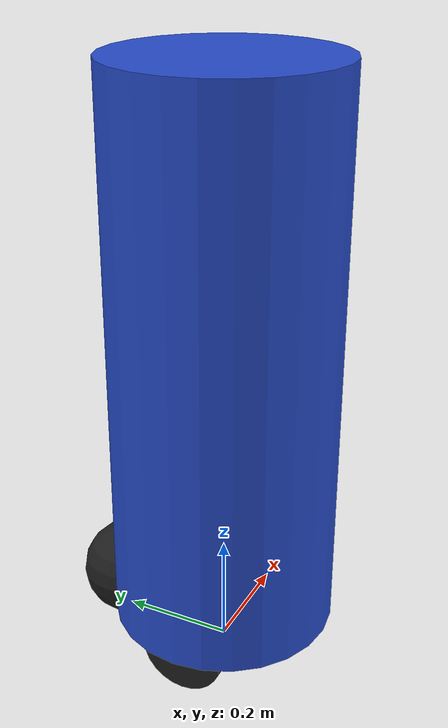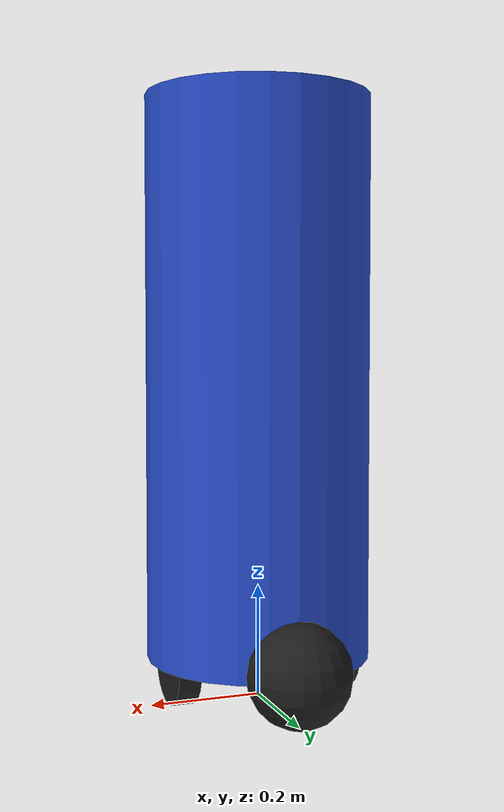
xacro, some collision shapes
<?xml version="1.0"?>
<robot xmlns:xacro="http://www.ros.org/wiki/xacro">

    <!-- Robot Base-->
    <xacro:property name="base_length" value="0.4" />
    <xacro:property name="base_width" value="0.4" />
    <xacro:property name="base_height" value="1" />
    <xacro:property name="wheel_radius" value="0.075" />
    <xacro:property name="wheel_length" value="0.04" />

    <link name="base_footprint" />

    <link name="base_link">
        <visual>
            <geometry>
                <mesh filename="package://telerobot_description/meshes/Mosro.stl" scale="0.001 0.001 0.001"/>
            </geometry>
            <origin xyz="0 0 ${base_height}" rpy="0 0 0" />
            <material name="blue" />
        </visual>
        <collision>
            <geometry>
                <cylinder radius="${base_width / 2.0}" length="${base_height}" />
            </geometry>
            <origin xyz="0 0 ${base_height / 2.0}" rpy="0 0 0" />
        </collision>
        <xacro:box_inertia m="1.0" l="${2*base_length}" w="${2*base_width}" h="${2*base_height}"
                           xyz="0 0 ${base_height / 2.0}" rpy="0 0 0" />
    </link>

    <joint name="base_to_base_footprint" type="fixed">
        <parent link="base_footprint" />
        <child link="base_link" />
        <origin xyz="0 0 ${wheel_radius}" rpy="0 0 0" />
    </joint>

    <link name="left_wheel_link">
        <visual>
            <geometry>
                <cylinder radius="${wheel_radius}" length="${wheel_length}" />
            </geometry>
            <origin xyz="0 0 0" rpy="0 ${3.14159/2.0} 0" />
            <material name="black" />
        </visual>
        <collision>
            <geometry>
                <cylinder radius="${wheel_radius}" length="${wheel_length}" />
            </geometry>
            <origin xyz="0 0 0" rpy="0 ${3.14159/2.0} 0" />
        </collision>
        <xacro:cylinder_inertia m="1.0" r="${wheel_radius}" h="${wheel_length}"
                               xyz="0 ${base_width / 2.0} ${wheel_radius}" rpy="0 ${-3.14159 / 2.0} 0" />
    </link>

    <joint name="left_wheel_joint" type="continuous">
        <parent link="base_link" />
        <child link="left_wheel_link" />
        <origin xyz="${-base_width / 2.0 + 0.05} 0 0" rpy="0 0 0" />
        <axis xyz="1 0 0" />
    </joint>

    <link name="right_wheel_link">
        <visual>
            <geometry>
                <cylinder radius="${wheel_radius}" length="${wheel_length}" />
            </geometry>
            <origin xyz="0 0 0" rpy="0 ${3.14159/2.0} 0" />
            <material name="black" />
        </visual>
        <collision>
            <geometry>
                <cylinder radius="${wheel_radius}" length="${wheel_length}" />
            </geometry>
            <origin xyz="0 0 0" rpy="0 ${3.14159/2.0} 0"  />
        </collision>
        <xacro:cylinder_inertia m="1.0" r="${wheel_radius}" h="${wheel_length}"
                               xyz="0 ${-base_width / 2.0} ${wheel_radius}" rpy="0 ${-3.14159 / 2.0} 0" />
    </link>
    <joint name="right_wheel_joint" type="continuous">
        <parent link="base_link" />
        <child link="right_wheel_link" />
        <origin xyz="${base_width / 2.0-0.05} 0 0" rpy="0 0 0" />
        <axis xyz="1 0 0" />
    </joint>

    <link name="caster_wheel_link">
        <visual>
            <geometry>
                <sphere radius="${wheel_radius+0.015}" />
            </geometry>
            <origin xyz="0 0 0" rpy="0 0 0" />
            <material name="black" />
        </visual>
        <collision>
            <geometry>
                <sphere radius="${wheel_radius+0.015}" />
            </geometry>
            <origin xyz="0 0 0" rpy="0 0 0" />
        </collision>
        <xacro:sphere_inertia m="1.0" r="${2*wheel_radius / 2.0}"
                              xyz="0 0 0" rpy="0 0 0" />
    </link>

    <joint name="caster_wheel_joint" type="fixed">
        <parent link="base_link" />
        <child link="caster_wheel_link" />
        <origin xyz="0 ${base_width / 2.0} 0.015" rpy="0 0 0" />
    </joint>

</robot>
